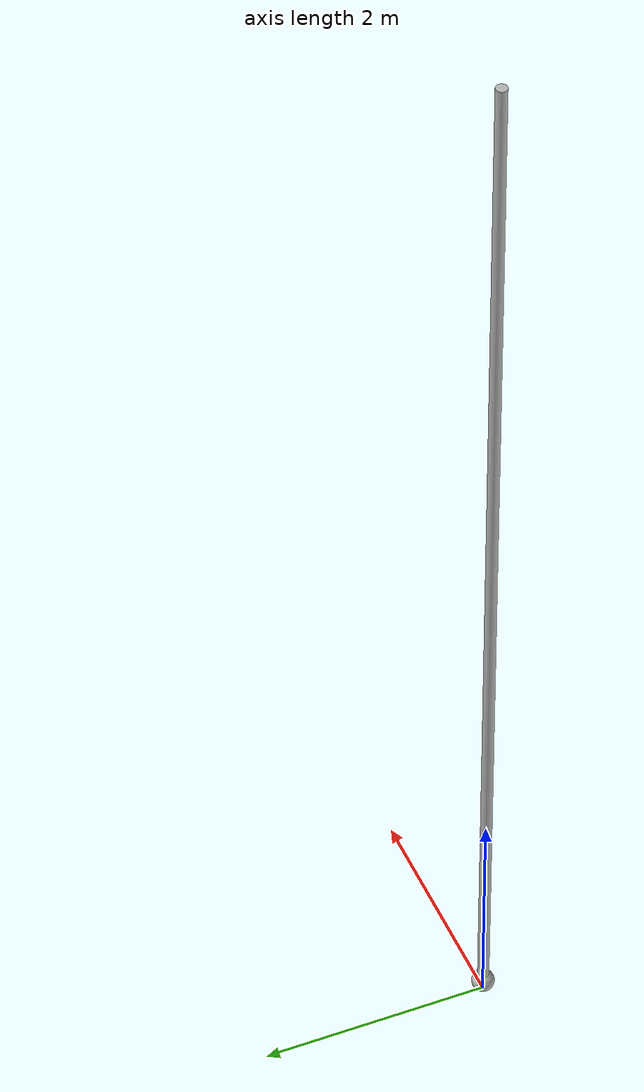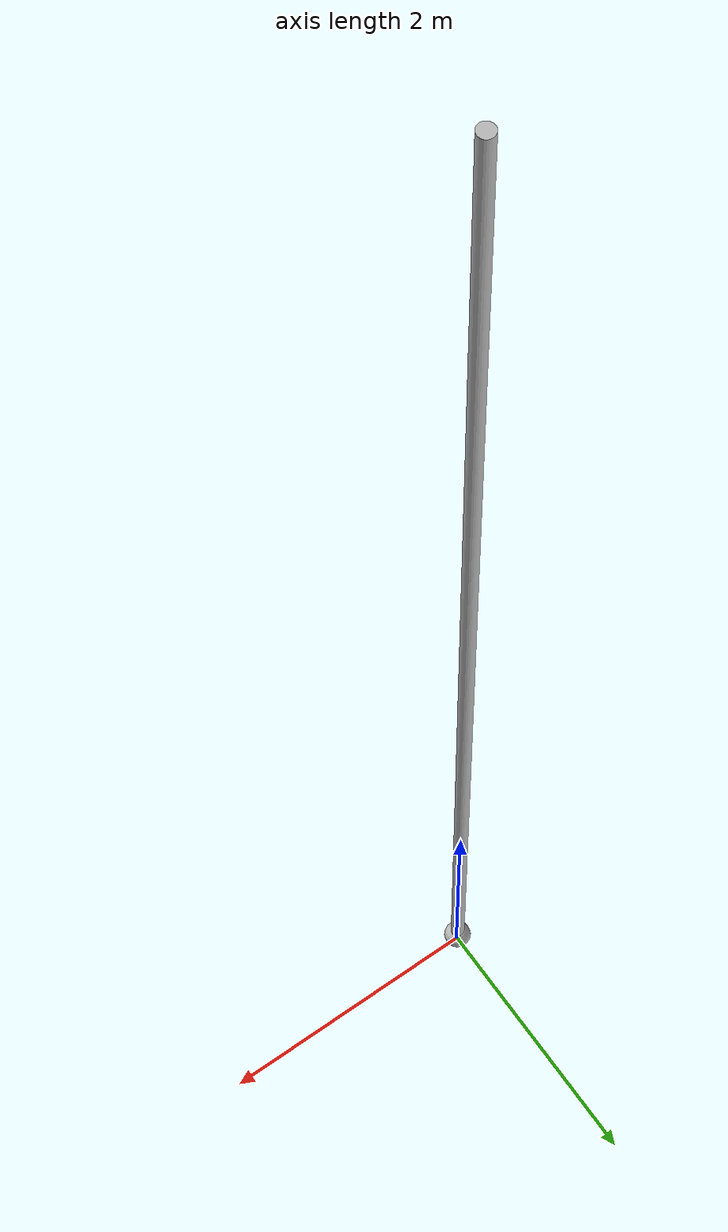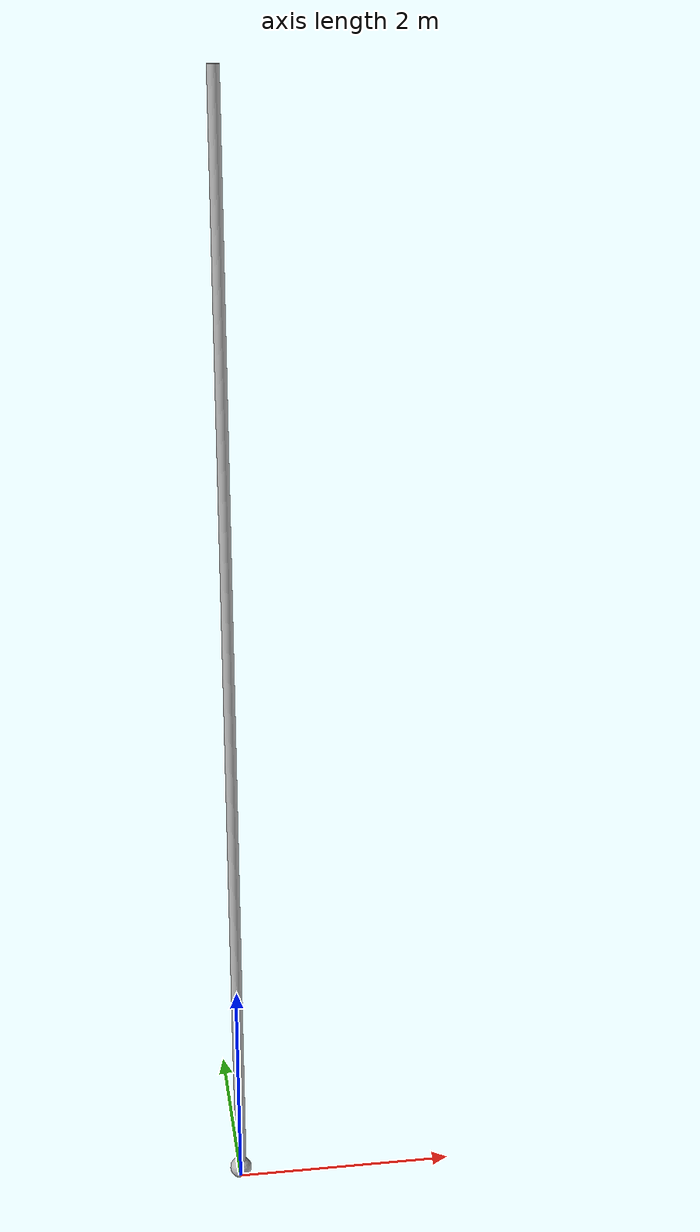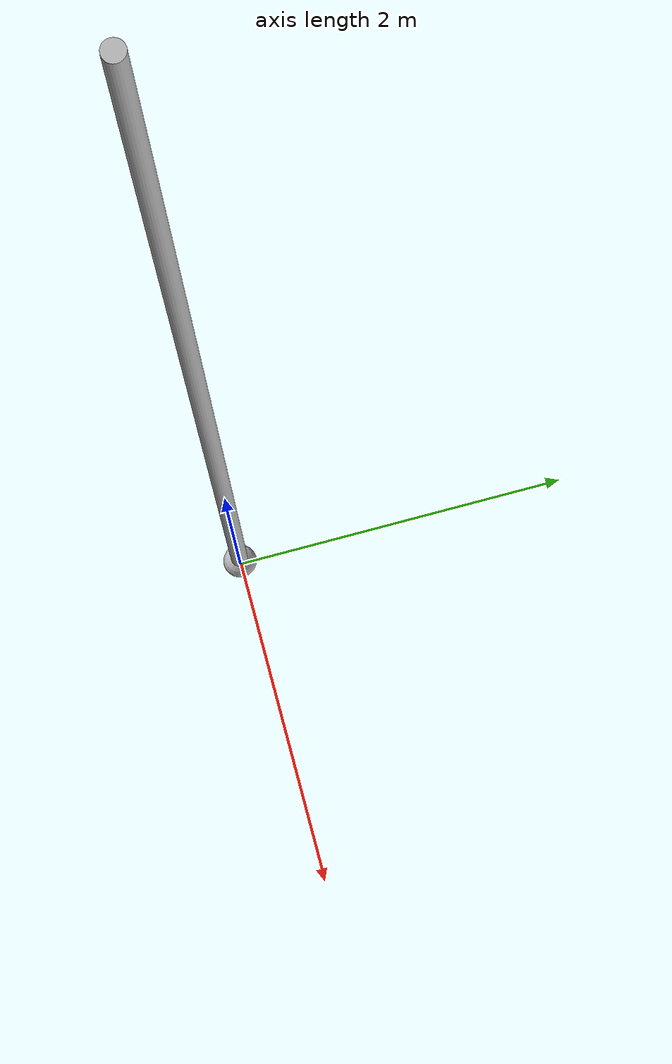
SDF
<?xml version="1.0" ?>
<sdf version="1.4">
  <world name="default">
    <model name="model">
      <pose>0.0 0.0 10.1 0 0.0 0.0</pose>
      <link name="link_1">
        <inertial>
          <pose>0.0 0.0 -10.0 0.0 0.0 0.0</pose>
          <inertia>
            <ixx>1e-1</ixx>
            <ixy>0.0</ixy>
            <ixz>0.0</ixz>
            <iyy>1e-1</iyy>
            <iyz>0.0</iyz>
            <izz>1e-1</izz>
          </inertia>
          <mass>10.0</mass>
        </inertial>
        <visual name="visual_cylinder">
          <pose>0.0 0.0 -5.0 0.0 0.0 0.0</pose>
          <geometry>
            <cylinder>
              <radius>0.05</radius>
              <length>10.0</length>
            </cylinder>
          </geometry>
          <material>
            <script>Gazebo/Green</script>
          </material>
        </visual>
        <collision name="collision_cylinder">
          <pose>0.0 0.0 -5.0 0.0 0.0 0.0</pose>
          <max_contacts>250</max_contacts>
          <geometry>
            <cylinder>
              <radius>0.05</radius>
              <length>10.0</length>
            </cylinder>
          </geometry>
        </collision>

        <visual name="visual_sphere">
          <pose>0.0 0.0 -10.0 0.0 0.0 0.0</pose>
          <geometry>
            <sphere>
              <radius>0.1</radius>
            </sphere>
          </geometry>
          <material>
            <script>Gazebo/Red</script>
          </material>
        </visual>
        <collision name="collision_sphere">
          <pose>0.0 0.0 -10.0 0.0 0.0 0.0</pose>
          <geometry>
            <sphere>
              <radius>0.1</radius>
            </sphere>
          </geometry>
        </collision>
      </link>

      <joint name="joint" type="revolute">
        <parent>world</parent>
        <child>link_1</child>
        <axis>
          <xyz>1.0 0.0 0.0</xyz>
        </axis>
      </joint>
    </model>
  </world>
</sdf>
